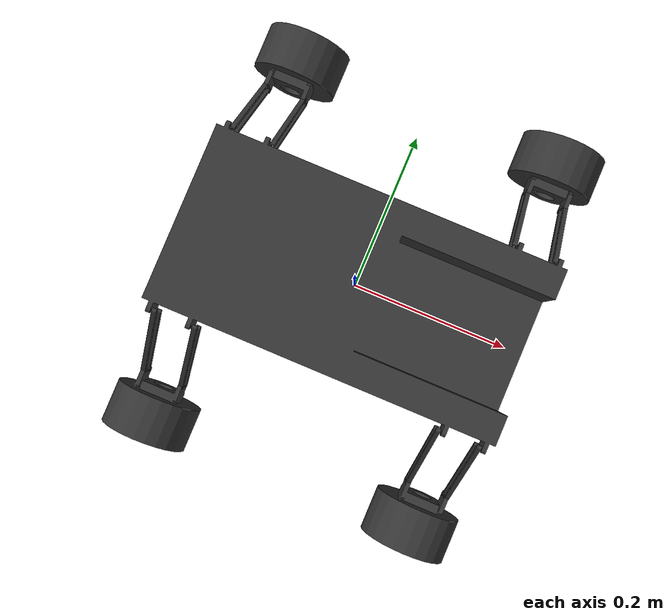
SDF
<?xml version="1.0" encoding="UTF-8"?>
<!-- DO NOT EDIT: Generated from XXX.sdf.jinja -->

<sdf version='1.9'>
  <model name='asl_rover'>

    <pose>0 0 0 0 0 0</pose>
    <self_collide>false</self_collide>
    <static>false</static>

    <link name='base_link'>
      <pose>0 0 0 0 0 0</pose>
      <inertial>
        <pose>0 0 0 0 0 0</pose>
        <mass>1.5</mass>
        <inertia>
          <ixx>0.035</ixx>
          <ixy>0</ixy>
          <ixz>0</ixz>
          <iyy>0.035</iyy>
          <iyz>0</iyz>
          <izz>0.055</izz>
        </inertia>
      </inertial>
      <collision name='base_link_top_collision'>
        <pose>0 0 0.02 0 0 0</pose>
        <geometry>
  <box>
    <size>0.5 0.5 0.01</size>
  </box>
</geometry>
        <surface>
          <contact>
            <ode>
              <min_depth>0.001</min_depth>
              <max_vel>0</max_vel>
            </ode>
          </contact>
          <friction>
            <ode/>
          </friction>
        </surface>
      </collision>

      <visual name='base_link_visual'>
        <pose>0 0 0 0 0 -1.5707963267948966</pose>
        <geometry>
          <mesh>
            <scale>1 1 1</scale>
            <uri>model://asl_rover/meshes/base.dae</uri>
          </mesh>
        </geometry>
        <material>
          <ambient>0.1 0.1 0.1 1</ambient>   <!-- Very dark gray for ambient lighting -->
          <diffuse>0.2 0.2 0.2 1</diffuse>   <!-- Slightly lighter dark gray for diffuse color -->
          <specular>0.6 0.6 0.6 1</specular> <!-- Medium specular to create a subtle shine -->
          <emissive>0.0 0.0 0.0 1</emissive> <!-- No emissive, to avoid self-illumination -->
        </material>
      </visual>
      <gravity>1</gravity>
      <velocity_decay/>

      <sensor name="air_pressure_sensor" type="air_pressure">
        <always_on>1</always_on>
        <update_rate>50</update_rate>
        <air_pressure>
          <!-- Noise modeled after BMP390 -->
          <pressure>
            <noise type="gaussian">
              <mean>0</mean>
              <stddev>3</stddev>
            </noise>
          </pressure>
        </air_pressure>
      </sensor>
      <sensor name="magnetometer_sensor" type="magnetometer">
        <always_on>1</always_on>
        <update_rate>100</update_rate>
        <magnetometer>
          <!-- TODO: update to fix units and coordinate system when we move past Harmonic -->
          <!-- See https://github.com/gazebosim/gz-sim/pull/2460 -->
          <!-- 3mgauss RMS: NOTE: noise is in tesla but sensor reports data in gauss -->
          <!-- Noise modeled after IIS2MDC -->
          <x>
            <noise type="gaussian">
              <stddev>0.0001</stddev>
            </noise>
          </x>
          <y>
            <noise type="gaussian">
              <stddev>0.0001</stddev>
            </noise>
          </y>
          <z>
            <noise type="gaussian">
              <stddev>0.0001</stddev>
            </noise>
          </z>
        </magnetometer>
      </sensor>
      <sensor name="imu_sensor" type="imu">
        <always_on>1</always_on>
        <update_rate>250</update_rate>
        <imu>
          <angular_velocity>
            <!-- Noise modeled after IIM42653 -->
            <!-- 0.05 deg/s converted to rad/s -->
            <x>
              <noise type="gaussian">
                <mean>0.0</mean>
                <stddev>0.0008726646</stddev>
              </noise>
            </x>
            <y>
              <noise type="gaussian">
                <mean>0.0</mean>
                <stddev>0.0008726646</stddev>
              </noise>
            </y>
            <z>
              <noise type="gaussian">
                <mean>0.0</mean>
                <stddev>0.0008726646</stddev>
              </noise>
            </z>
          </angular_velocity>
          <linear_acceleration>
            <!-- Noise modeled after IIM42653 -->
            <!-- X & Y axis: 0.65 mg-rms converted to m/ss -->
            <x>
              <noise type="gaussian">
                <mean>0.0</mean>
                <stddev>0.00637</stddev>
              </noise>
            </x>
            <y>
              <noise type="gaussian">
                <mean>0.0</mean>
                <stddev>0.00637</stddev>
              </noise>
            </y>
            <!-- Z axis: 0.70 mg-rms converted to m/ss-->
            <z>
              <noise type="gaussian">
                <mean>0.0</mean>
                <stddev>0.00686</stddev>
              </noise>
            </z>
          </linear_acceleration>
        </imu>
      </sensor>
      <sensor name="navsat_sensor" type="navsat">
        <always_on>1</always_on>
        <update_rate>30</update_rate>
      </sensor>

    </link>

    <joint name='wheel0_bar_base_joint' type='revolute'>

  <pose relative_to='base_link'>0.1925 0.12625 -0.0075 -0.7853981633974483 0 0</pose>

  <child>wheel0_bar_link</child>
  <parent>base_link</parent>
  <axis>
    <xyz>1 0 0</xyz>
    <limit>
      <lower>-0.0</lower>
      <upper>0.0</upper>
    </limit>
    <dynamics>
      <spring_reference>0</spring_reference>
      <spring_stiffness>1000</spring_stiffness>
      <damping>1</damping>
    </dynamics>
    <use_parent_model_frame>1</use_parent_model_frame>
  </axis>
</joint>

<link name='wheel0_bar_link'>

  <pose relative_to='wheel0_bar_base_joint'>0 0.06 0 0 0 1.5707963267948966</pose>

  <inertial>
        <pose>0 0 0 0 0 0</pose>
        <mass>0.001</mass>
        <inertia>
          <ixx>2.1733e-06</ixx>
          <ixy>0</ixy>
          <ixz>0</ixz>
          <iyy>2.1733e-06</iyy>
          <iyz>0</iyz>
          <izz>1.8e-07</izz>
        </inertia>
  </inertial>

  <visual name='wheel0_bar1_visual'>

    <pose relative_to='wheel0_bar_link'>0 0.0275 0 0 0 0</pose>

      <geometry>
        <mesh>
          <scale>1 1 1</scale>
          <uri>model://asl_rover/meshes/bar.dae</uri>
        </mesh>
      </geometry>
      <material>
        <ambient>0.1 0.1 0.1 1</ambient>   <!-- Very dark gray for ambient lighting -->
        <diffuse>0.2 0.2 0.2 1</diffuse>   <!-- Slightly lighter dark gray for diffuse color -->
        <specular>0.6 0.6 0.6 1</specular> <!-- Medium specular to create a subtle shine -->
        <emissive>0.0 0.0 0.0 1</emissive> <!-- No emissive, to avoid self-illumination -->
      </material>
  </visual>

  <visual name='wheel0_bar2_visual'>

    <pose relative_to='wheel0_bar_link'>0 -0.0275 0 0 0 0</pose>

      <geometry>
        <mesh>
          <scale>1 1 1</scale>
          <uri>model://asl_rover/meshes/bar.dae</uri>
        </mesh>
      </geometry>
      <material>
        <ambient>0.1 0.1 0.1 1</ambient>   <!-- Very dark gray for ambient lighting -->
        <diffuse>0.2 0.2 0.2 1</diffuse>   <!-- Slightly lighter dark gray for diffuse color -->
        <specular>0.6 0.6 0.6 1</specular> <!-- Medium specular to create a subtle shine -->
        <emissive>0.0 0.0 0.0 1</emissive> <!-- No emissive, to avoid self-illumination -->
      </material>
  </visual>

  <visual name='wheel0_bar3_visual'>

    <pose relative_to='wheel0_bar_link'>0.01873832970144351 0.0275 -0.01873832970144351 0 0 0</pose>

      <geometry>
        <mesh>
          <scale>1 1 1</scale>
          <uri>model://asl_rover/meshes/bar.dae</uri>
        </mesh>
      </geometry>
      <material>
        <ambient>0.1 0.1 0.1 1</ambient>   <!-- Very dark gray for ambient lighting -->
        <diffuse>0.2 0.2 0.2 1</diffuse>   <!-- Slightly lighter dark gray for diffuse color -->
        <specular>0.6 0.6 0.6 1</specular> <!-- Medium specular to create a subtle shine -->
        <emissive>0.0 0.0 0.0 1</emissive> <!-- No emissive, to avoid self-illumination -->
      </material>
  </visual>

  <visual name='wheel0_bar4_visual'>

    <pose relative_to='wheel0_bar_link'>0.01873832970144351 -0.0275 -0.01873832970144351 0 0 0</pose>

      <geometry>
        <mesh>
          <scale>1 1 1</scale>
          <uri>model://asl_rover/meshes/bar.dae</uri>
        </mesh>
      </geometry>
      <material>
        <ambient>0.1 0.1 0.1 1</ambient>   <!-- Very dark gray for ambient lighting -->
        <diffuse>0.2 0.2 0.2 1</diffuse>   <!-- Slightly lighter dark gray for diffuse color -->
        <specular>0.6 0.6 0.6 1</specular> <!-- Medium specular to create a subtle shine -->
        <emissive>0.0 0.0 0.0 1</emissive> <!-- No emissive, to avoid self-illumination -->
      </material>
  </visual>
</link>

<joint name='wheel0_wheel_housing_bar_joint' type='revolute'>

  <pose relative_to='wheel0_bar_link'>0.06 0 0 0.7853981633974483 0 -1.5707963267948966</pose>

  <child>wheel0_wheel_housing_link</child>
  <parent>wheel0_bar_link</parent>
  <axis>
    <xyz>1 0 0</xyz>
    <limit>
      <lower>-0.0</lower>
      <upper>0.0</upper>
    </limit>
    <dynamics>
      <spring_reference>0</spring_reference>
      <spring_stiffness>0</spring_stiffness>
    </dynamics>
    <use_parent_model_frame>1</use_parent_model_frame>
  </axis>
</joint>

<link name='wheel0_wheel_housing_link'>

  <pose relative_to='wheel0_wheel_housing_bar_joint'>0 0 -0.0375 0 0 0</pose>

  <inertial>
        <pose>0 0 0 0 0 0</pose>
        <mass>0.001</mass>
        <inertia>
          <ixx>2.1733e-06</ixx>
          <ixy>0</ixy>
          <ixz>0</ixz>
          <iyy>2.1733e-06</iyy>
          <iyz>0</iyz>
          <izz>1.8e-07</izz>
        </inertia>
  </inertial>

  <visual name='wheel0_wheel_housing_visual'>

    <pose>0 0 0 0 0 1.5707963267948966</pose>

      <geometry>
        <mesh>
          <scale>1 1 1</scale>
          <uri>model://asl_rover/meshes/wheel_housing.dae</uri>
        </mesh>
      </geometry>
      <material>
        <ambient>0.1 0.1 0.1 1</ambient>   <!-- Very dark gray for ambient lighting -->
        <diffuse>0.2 0.2 0.2 1</diffuse>   <!-- Slightly lighter dark gray for diffuse color -->
        <specular>0.6 0.6 0.6 1</specular> <!-- Medium specular to create a subtle shine -->
        <emissive>0.0 0.0 0.0 1</emissive> <!-- No emissive, to avoid self-illumination -->
      </material>
  </visual>
</link>

<joint name='wheel0_wheel_joint' type='revolute'>

  <pose relative_to='wheel0_wheel_housing_link'>0 0.055 0 0 0 0</pose>

  <child>wheel0_link</child>
  <parent>wheel0_wheel_housing_link</parent>
  <axis>
    <xyz>0 1 0</xyz>
    <limit>
      <lower>-1e+16</lower>
      <upper>1e+16</upper>
    </limit>
    <dynamics>
      <spring_reference>0</spring_reference>
      <spring_stiffness>0</spring_stiffness>
      <friction>0.001</friction>
      <damping>0.0</damping>
    </dynamics>
    <use_parent_model_frame>1</use_parent_model_frame>
  </axis>
</joint>

<link name='wheel0_link'>
  <pose relative_to='wheel0_wheel_joint'>0 0 0 0 0 0</pose>
  <inertial>
        <pose>0 0 0 0 0 0</pose>
        <mass>0.001</mass>
        <inertia>
          <ixx>2.1733e-06</ixx>
          <ixy>0</ixy>
          <ixz>0</ixz>
          <iyy>2.1733e-06</iyy>
          <iyz>0</iyz>
          <izz>1.8e-07</izz>
        </inertia>
  </inertial>

  <visual name='wheel0_wheel_housing_visual'>
    <pose>0 0 0 1.5707963267948966 0 0</pose>

      <geometry>
  <cylinder>
    <length>0.06</length>
    <radius>0.06</radius>
  </cylinder>
</geometry>

      <material>
        <ambient>0.1 0.1 0.1 1</ambient>   <!-- Very dark gray for ambient lighting -->
        <diffuse>0.2 0.2 0.2 1</diffuse>   <!-- Slightly lighter dark gray for diffuse color -->
        <specular>0.6 0.6 0.6 1</specular> <!-- Medium specular to create a subtle shine -->
        <emissive>0.0 0.0 0.0 1</emissive> <!-- No emissive, to avoid self-illumination -->
      </material>
  </visual>

  <collision name='wheel0_link_collision'>
				<pose>0 0 0 1.5707963267948966 0 0</pose>
				<geometry>
  <cylinder>
    <length>0.06</length>
    <radius>0.06</radius>
  </cylinder>
</geometry>
				<max_contacts>1</max_contacts>
				<surface>
					<friction>
					<torsional>
						<coefficient>0.25</coefficient>
						<use_patch_radius>1</use_patch_radius>
						<surface_radius>0.0686</surface_radius>
					</torsional>
					<ode>
						<mu>1.0</mu>
						<mu2>1.0</mu2>
						<fdir1>1 0 0</fdir1>
						<slip1>0.0</slip1>
						<slip2>0.0</slip2>
					</ode>
					</friction>
					<bounce>
						<restitution_coefficient>0</restitution_coefficient>
						<threshold>1e6</threshold>
					</bounce>
					<contact>
					<ode>
						<min_depth>0.001</min_depth>
						<max_vel>0.0</max_vel>
						<kp>1.0e6</kp>
						<kd>100.0</kd>
					</ode>
					</contact>
				</surface>
			</collision>

</link>

<plugin filename="gz-sim-joint-controller-system" name="gz::sim::systems::JointController">
  <joint_name>wheel0_wheel_joint</joint_name>
  <sub_topic>command/motor_speed</sub_topic>
  <use_actuator_msg>true</use_actuator_msg>

  <actuator_number>0</actuator_number>

  <p_gain>10.0</p_gain>
</plugin>

    <joint name='wheel1_bar_base_joint' type='revolute'>

  <pose relative_to='base_link'>0.1925 -0.12625 -0.0075 3.9269908169872414 0 0</pose>

  <child>wheel1_bar_link</child>
  <parent>base_link</parent>
  <axis>
    <xyz>1 0 0</xyz>
    <limit>
      <lower>-0.0</lower>
      <upper>0.0</upper>
    </limit>
    <dynamics>
      <spring_reference>0</spring_reference>
      <spring_stiffness>1000</spring_stiffness>
      <damping>1</damping>
    </dynamics>
    <use_parent_model_frame>1</use_parent_model_frame>
  </axis>
</joint>

<link name='wheel1_bar_link'>

  <pose relative_to='wheel1_bar_base_joint'>0 0.06 0 0 0 1.5707963267948966</pose>

  <inertial>
        <pose>0 0 0 0 0 0</pose>
        <mass>0.001</mass>
        <inertia>
          <ixx>2.1733e-06</ixx>
          <ixy>0</ixy>
          <ixz>0</ixz>
          <iyy>2.1733e-06</iyy>
          <iyz>0</iyz>
          <izz>1.8e-07</izz>
        </inertia>
  </inertial>

  <visual name='wheel1_bar1_visual'>

    <pose relative_to='wheel1_bar_link'>0 -0.0275 0 0 0 0</pose>

      <geometry>
        <mesh>
          <scale>1 1 1</scale>
          <uri>model://asl_rover/meshes/bar.dae</uri>
        </mesh>
      </geometry>
      <material>
        <ambient>0.1 0.1 0.1 1</ambient>   <!-- Very dark gray for ambient lighting -->
        <diffuse>0.2 0.2 0.2 1</diffuse>   <!-- Slightly lighter dark gray for diffuse color -->
        <specular>0.6 0.6 0.6 1</specular> <!-- Medium specular to create a subtle shine -->
        <emissive>0.0 0.0 0.0 1</emissive> <!-- No emissive, to avoid self-illumination -->
      </material>
  </visual>

  <visual name='wheel1_bar2_visual'>

    <pose relative_to='wheel1_bar_link'>0 0.0275 0 0 0 0</pose>

      <geometry>
        <mesh>
          <scale>1 1 1</scale>
          <uri>model://asl_rover/meshes/bar.dae</uri>
        </mesh>
      </geometry>
      <material>
        <ambient>0.1 0.1 0.1 1</ambient>   <!-- Very dark gray for ambient lighting -->
        <diffuse>0.2 0.2 0.2 1</diffuse>   <!-- Slightly lighter dark gray for diffuse color -->
        <specular>0.6 0.6 0.6 1</specular> <!-- Medium specular to create a subtle shine -->
        <emissive>0.0 0.0 0.0 1</emissive> <!-- No emissive, to avoid self-illumination -->
      </material>
  </visual>

  <visual name='wheel1_bar3_visual'>

    <pose relative_to='wheel1_bar_link'>0.01873832970144351 -0.0275 0.01873832970144351 0 0 0</pose>

      <geometry>
        <mesh>
          <scale>1 1 1</scale>
          <uri>model://asl_rover/meshes/bar.dae</uri>
        </mesh>
      </geometry>
      <material>
        <ambient>0.1 0.1 0.1 1</ambient>   <!-- Very dark gray for ambient lighting -->
        <diffuse>0.2 0.2 0.2 1</diffuse>   <!-- Slightly lighter dark gray for diffuse color -->
        <specular>0.6 0.6 0.6 1</specular> <!-- Medium specular to create a subtle shine -->
        <emissive>0.0 0.0 0.0 1</emissive> <!-- No emissive, to avoid self-illumination -->
      </material>
  </visual>

  <visual name='wheel1_bar4_visual'>

    <pose relative_to='wheel1_bar_link'>0.01873832970144351 0.0275 0.01873832970144351 0 0 0</pose>

      <geometry>
        <mesh>
          <scale>1 1 1</scale>
          <uri>model://asl_rover/meshes/bar.dae</uri>
        </mesh>
      </geometry>
      <material>
        <ambient>0.1 0.1 0.1 1</ambient>   <!-- Very dark gray for ambient lighting -->
        <diffuse>0.2 0.2 0.2 1</diffuse>   <!-- Slightly lighter dark gray for diffuse color -->
        <specular>0.6 0.6 0.6 1</specular> <!-- Medium specular to create a subtle shine -->
        <emissive>0.0 0.0 0.0 1</emissive> <!-- No emissive, to avoid self-illumination -->
      </material>
  </visual>
</link>

<joint name='wheel1_wheel_housing_bar_joint' type='revolute'>

  <pose relative_to='wheel1_bar_link'>0.06 0 0 2.356194490192345 0 -1.5707963267948966</pose>

  <child>wheel1_wheel_housing_link</child>
  <parent>wheel1_bar_link</parent>
  <axis>
    <xyz>1 0 0</xyz>
    <limit>
      <lower>-0.0</lower>
      <upper>0.0</upper>
    </limit>
    <dynamics>
      <spring_reference>0</spring_reference>
      <spring_stiffness>0</spring_stiffness>
    </dynamics>
    <use_parent_model_frame>1</use_parent_model_frame>
  </axis>
</joint>

<link name='wheel1_wheel_housing_link'>

  <pose relative_to='wheel1_wheel_housing_bar_joint'>0 0 -0.0375 0 0 0</pose>

  <inertial>
        <pose>0 0 0 0 0 0</pose>
        <mass>0.001</mass>
        <inertia>
          <ixx>2.1733e-06</ixx>
          <ixy>0</ixy>
          <ixz>0</ixz>
          <iyy>2.1733e-06</iyy>
          <iyz>0</iyz>
          <izz>1.8e-07</izz>
        </inertia>
  </inertial>

  <visual name='wheel1_wheel_housing_visual'>

    <pose>0 0 0 0 0 -1.5707963267948966</pose>

      <geometry>
        <mesh>
          <scale>1 1 1</scale>
          <uri>model://asl_rover/meshes/wheel_housing.dae</uri>
        </mesh>
      </geometry>
      <material>
        <ambient>0.1 0.1 0.1 1</ambient>   <!-- Very dark gray for ambient lighting -->
        <diffuse>0.2 0.2 0.2 1</diffuse>   <!-- Slightly lighter dark gray for diffuse color -->
        <specular>0.6 0.6 0.6 1</specular> <!-- Medium specular to create a subtle shine -->
        <emissive>0.0 0.0 0.0 1</emissive> <!-- No emissive, to avoid self-illumination -->
      </material>
  </visual>
</link>

<joint name='wheel1_wheel_joint' type='revolute'>

  <pose relative_to='wheel1_wheel_housing_link'>0 -0.055 0 0 0 0</pose>

  <child>wheel1_link</child>
  <parent>wheel1_wheel_housing_link</parent>
  <axis>
    <xyz>0 1 0</xyz>
    <limit>
      <lower>-1e+16</lower>
      <upper>1e+16</upper>
    </limit>
    <dynamics>
      <spring_reference>0</spring_reference>
      <spring_stiffness>0</spring_stiffness>
      <friction>0.001</friction>
      <damping>0.0</damping>
    </dynamics>
    <use_parent_model_frame>1</use_parent_model_frame>
  </axis>
</joint>

<link name='wheel1_link'>
  <pose relative_to='wheel1_wheel_joint'>0 0 0 0 0 0</pose>
  <inertial>
        <pose>0 0 0 0 0 0</pose>
        <mass>0.001</mass>
        <inertia>
          <ixx>2.1733e-06</ixx>
          <ixy>0</ixy>
          <ixz>0</ixz>
          <iyy>2.1733e-06</iyy>
          <iyz>0</iyz>
          <izz>1.8e-07</izz>
        </inertia>
  </inertial>

  <visual name='wheel1_wheel_housing_visual'>
    <pose>0 0 0 1.5707963267948966 0 0</pose>

      <geometry>
  <cylinder>
    <length>0.06</length>
    <radius>0.06</radius>
  </cylinder>
</geometry>

      <material>
        <ambient>0.1 0.1 0.1 1</ambient>   <!-- Very dark gray for ambient lighting -->
        <diffuse>0.2 0.2 0.2 1</diffuse>   <!-- Slightly lighter dark gray for diffuse color -->
        <specular>0.6 0.6 0.6 1</specular> <!-- Medium specular to create a subtle shine -->
        <emissive>0.0 0.0 0.0 1</emissive> <!-- No emissive, to avoid self-illumination -->
      </material>
  </visual>

  <collision name='wheel1_link_collision'>
				<pose>0 0 0 1.5707963267948966 0 0</pose>
				<geometry>
  <cylinder>
    <length>0.06</length>
    <radius>0.06</radius>
  </cylinder>
</geometry>
				<max_contacts>1</max_contacts>
				<surface>
					<friction>
					<torsional>
						<coefficient>0.25</coefficient>
						<use_patch_radius>1</use_patch_radius>
						<surface_radius>0.0686</surface_radius>
					</torsional>
					<ode>
						<mu>1.0</mu>
						<mu2>1.0</mu2>
						<fdir1>1 0 0</fdir1>
						<slip1>0.0</slip1>
						<slip2>0.0</slip2>
					</ode>
					</friction>
					<bounce>
						<restitution_coefficient>0</restitution_coefficient>
						<threshold>1e6</threshold>
					</bounce>
					<contact>
					<ode>
						<min_depth>0.001</min_depth>
						<max_vel>0.0</max_vel>
						<kp>1.0e6</kp>
						<kd>100.0</kd>
					</ode>
					</contact>
				</surface>
			</collision>

</link>

<plugin filename="gz-sim-joint-controller-system" name="gz::sim::systems::JointController">
  <joint_name>wheel1_wheel_joint</joint_name>
  <sub_topic>command/motor_speed</sub_topic>
  <use_actuator_msg>true</use_actuator_msg>

  <actuator_number>1</actuator_number>

  <p_gain>10.0</p_gain>
</plugin>

    <joint name='wheel2_bar_base_joint' type='revolute'>

  <pose relative_to='base_link'>-0.1925 0.12625 -0.0075 -0.7853981633974483 0 0</pose>

  <child>wheel2_bar_link</child>
  <parent>base_link</parent>
  <axis>
    <xyz>1 0 0</xyz>
    <limit>
      <lower>-0.0</lower>
      <upper>0.0</upper>
    </limit>
    <dynamics>
      <spring_reference>0</spring_reference>
      <spring_stiffness>1000</spring_stiffness>
      <damping>1</damping>
    </dynamics>
    <use_parent_model_frame>1</use_parent_model_frame>
  </axis>
</joint>

<link name='wheel2_bar_link'>

  <pose relative_to='wheel2_bar_base_joint'>0 0.06 0 0 0 1.5707963267948966</pose>

  <inertial>
        <pose>0 0 0 0 0 0</pose>
        <mass>0.001</mass>
        <inertia>
          <ixx>2.1733e-06</ixx>
          <ixy>0</ixy>
          <ixz>0</ixz>
          <iyy>2.1733e-06</iyy>
          <iyz>0</iyz>
          <izz>1.8e-07</izz>
        </inertia>
  </inertial>

  <visual name='wheel2_bar1_visual'>

    <pose relative_to='wheel2_bar_link'>0 0.0275 0 0 0 0</pose>

      <geometry>
        <mesh>
          <scale>1 1 1</scale>
          <uri>model://asl_rover/meshes/bar.dae</uri>
        </mesh>
      </geometry>
      <material>
        <ambient>0.1 0.1 0.1 1</ambient>   <!-- Very dark gray for ambient lighting -->
        <diffuse>0.2 0.2 0.2 1</diffuse>   <!-- Slightly lighter dark gray for diffuse color -->
        <specular>0.6 0.6 0.6 1</specular> <!-- Medium specular to create a subtle shine -->
        <emissive>0.0 0.0 0.0 1</emissive> <!-- No emissive, to avoid self-illumination -->
      </material>
  </visual>

  <visual name='wheel2_bar2_visual'>

    <pose relative_to='wheel2_bar_link'>0 -0.0275 0 0 0 0</pose>

      <geometry>
        <mesh>
          <scale>1 1 1</scale>
          <uri>model://asl_rover/meshes/bar.dae</uri>
        </mesh>
      </geometry>
      <material>
        <ambient>0.1 0.1 0.1 1</ambient>   <!-- Very dark gray for ambient lighting -->
        <diffuse>0.2 0.2 0.2 1</diffuse>   <!-- Slightly lighter dark gray for diffuse color -->
        <specular>0.6 0.6 0.6 1</specular> <!-- Medium specular to create a subtle shine -->
        <emissive>0.0 0.0 0.0 1</emissive> <!-- No emissive, to avoid self-illumination -->
      </material>
  </visual>

  <visual name='wheel2_bar3_visual'>

    <pose relative_to='wheel2_bar_link'>0.01873832970144351 0.0275 -0.01873832970144351 0 0 0</pose>

      <geometry>
        <mesh>
          <scale>1 1 1</scale>
          <uri>model://asl_rover/meshes/bar.dae</uri>
        </mesh>
      </geometry>
      <material>
        <ambient>0.1 0.1 0.1 1</ambient>   <!-- Very dark gray for ambient lighting -->
        <diffuse>0.2 0.2 0.2 1</diffuse>   <!-- Slightly lighter dark gray for diffuse color -->
        <specular>0.6 0.6 0.6 1</specular> <!-- Medium specular to create a subtle shine -->
        <emissive>0.0 0.0 0.0 1</emissive> <!-- No emissive, to avoid self-illumination -->
      </material>
  </visual>

  <visual name='wheel2_bar4_visual'>

    <pose relative_to='wheel2_bar_link'>0.01873832970144351 -0.0275 -0.01873832970144351 0 0 0</pose>

      <geometry>
        <mesh>
          <scale>1 1 1</scale>
          <uri>model://asl_rover/meshes/bar.dae</uri>
        </mesh>
      </geometry>
      <material>
        <ambient>0.1 0.1 0.1 1</ambient>   <!-- Very dark gray for ambient lighting -->
        <diffuse>0.2 0.2 0.2 1</diffuse>   <!-- Slightly lighter dark gray for diffuse color -->
        <specular>0.6 0.6 0.6 1</specular> <!-- Medium specular to create a subtle shine -->
        <emissive>0.0 0.0 0.0 1</emissive> <!-- No emissive, to avoid self-illumination -->
      </material>
  </visual>
</link>

<joint name='wheel2_wheel_housing_bar_joint' type='revolute'>

  <pose relative_to='wheel2_bar_link'>0.06 0 0 0.7853981633974483 0 -1.5707963267948966</pose>

  <child>wheel2_wheel_housing_link</child>
  <parent>wheel2_bar_link</parent>
  <axis>
    <xyz>1 0 0</xyz>
    <limit>
      <lower>-0.0</lower>
      <upper>0.0</upper>
    </limit>
    <dynamics>
      <spring_reference>0</spring_reference>
      <spring_stiffness>0</spring_stiffness>
    </dynamics>
    <use_parent_model_frame>1</use_parent_model_frame>
  </axis>
</joint>

<link name='wheel2_wheel_housing_link'>

  <pose relative_to='wheel2_wheel_housing_bar_joint'>0 0 -0.0375 0 0 0</pose>

  <inertial>
        <pose>0 0 0 0 0 0</pose>
        <mass>0.001</mass>
        <inertia>
          <ixx>2.1733e-06</ixx>
          <ixy>0</ixy>
          <ixz>0</ixz>
          <iyy>2.1733e-06</iyy>
          <iyz>0</iyz>
          <izz>1.8e-07</izz>
        </inertia>
  </inertial>

  <visual name='wheel2_wheel_housing_visual'>

    <pose>0 0 0 0 0 1.5707963267948966</pose>

      <geometry>
        <mesh>
          <scale>1 1 1</scale>
          <uri>model://asl_rover/meshes/wheel_housing.dae</uri>
        </mesh>
      </geometry>
      <material>
        <ambient>0.1 0.1 0.1 1</ambient>   <!-- Very dark gray for ambient lighting -->
        <diffuse>0.2 0.2 0.2 1</diffuse>   <!-- Slightly lighter dark gray for diffuse color -->
        <specular>0.6 0.6 0.6 1</specular> <!-- Medium specular to create a subtle shine -->
        <emissive>0.0 0.0 0.0 1</emissive> <!-- No emissive, to avoid self-illumination -->
      </material>
  </visual>
</link>

<joint name='wheel2_wheel_joint' type='revolute'>

  <pose relative_to='wheel2_wheel_housing_link'>0 0.055 0 0 0 0</pose>

  <child>wheel2_link</child>
  <parent>wheel2_wheel_housing_link</parent>
  <axis>
    <xyz>0 1 0</xyz>
    <limit>
      <lower>-1e+16</lower>
      <upper>1e+16</upper>
    </limit>
    <dynamics>
      <spring_reference>0</spring_reference>
      <spring_stiffness>0</spring_stiffness>
      <friction>0.001</friction>
      <damping>0.0</damping>
    </dynamics>
    <use_parent_model_frame>1</use_parent_model_frame>
  </axis>
</joint>

<link name='wheel2_link'>
  <pose relative_to='wheel2_wheel_joint'>0 0 0 0 0 0</pose>
  <inertial>
        <pose>0 0 0 0 0 0</pose>
        <mass>0.001</mass>
        <inertia>
          <ixx>2.1733e-06</ixx>
          <ixy>0</ixy>
          <ixz>0</ixz>
          <iyy>2.1733e-06</iyy>
          <iyz>0</iyz>
          <izz>1.8e-07</izz>
        </inertia>
  </inertial>

  <visual name='wheel2_wheel_housing_visual'>
    <pose>0 0 0 1.5707963267948966 0 0</pose>

      <geometry>
  <cylinder>
    <length>0.06</length>
    <radius>0.06</radius>
  </cylinder>
</geometry>

      <material>
        <ambient>0.1 0.1 0.1 1</ambient>   <!-- Very dark gray for ambient lighting -->
        <diffuse>0.2 0.2 0.2 1</diffuse>   <!-- Slightly lighter dark gray for diffuse color -->
        <specular>0.6 0.6 0.6 1</specular> <!-- Medium specular to create a subtle shine -->
        <emissive>0.0 0.0 0.0 1</emissive> <!-- No emissive, to avoid self-illumination -->
      </material>
  </visual>

  <collision name='wheel2_link_collision'>
				<pose>0 0 0 1.5707963267948966 0 0</pose>
				<geometry>
  <cylinder>
    <length>0.06</length>
    <radius>0.06</radius>
  </cylinder>
</geometry>
				<max_contacts>1</max_contacts>
				<surface>
					<friction>
					<torsional>
						<coefficient>0.25</coefficient>
						<use_patch_radius>1</use_patch_radius>
						<surface_radius>0.0686</surface_radius>
					</torsional>
					<ode>
						<mu>1.0</mu>
						<mu2>1.0</mu2>
						<fdir1>1 0 0</fdir1>
						<slip1>0.0</slip1>
						<slip2>0.0</slip2>
					</ode>
					</friction>
					<bounce>
						<restitution_coefficient>0</restitution_coefficient>
						<threshold>1e6</threshold>
					</bounce>
					<contact>
					<ode>
						<min_depth>0.001</min_depth>
						<max_vel>0.0</max_vel>
						<kp>1.0e6</kp>
						<kd>100.0</kd>
					</ode>
					</contact>
				</surface>
			</collision>

</link>

<plugin filename="gz-sim-joint-controller-system" name="gz::sim::systems::JointController">
  <joint_name>wheel2_wheel_joint</joint_name>
  <sub_topic>command/motor_speed</sub_topic>
  <use_actuator_msg>true</use_actuator_msg>

  <actuator_number>0</actuator_number>

  <p_gain>10.0</p_gain>
</plugin>

    <joint name='wheel3_bar_base_joint' type='revolute'>

  <pose relative_to='base_link'>-0.1925 -0.12625 -0.0075 3.9269908169872414 0 0</pose>

  <child>wheel3_bar_link</child>
  <parent>base_link</parent>
  <axis>
    <xyz>1 0 0</xyz>
    <limit>
      <lower>-0.0</lower>
      <upper>0.0</upper>
    </limit>
    <dynamics>
      <spring_reference>0</spring_reference>
      <spring_stiffness>1000</spring_stiffness>
      <damping>1</damping>
    </dynamics>
    <use_parent_model_frame>1</use_parent_model_frame>
  </axis>
</joint>

<link name='wheel3_bar_link'>

  <pose relative_to='wheel3_bar_base_joint'>0 0.06 0 0 0 1.5707963267948966</pose>

  <inertial>
        <pose>0 0 0 0 0 0</pose>
        <mass>0.001</mass>
        <inertia>
          <ixx>2.1733e-06</ixx>
          <ixy>0</ixy>
          <ixz>0</ixz>
          <iyy>2.1733e-06</iyy>
          <iyz>0</iyz>
          <izz>1.8e-07</izz>
        </inertia>
  </inertial>

  <visual name='wheel3_bar1_visual'>

    <pose relative_to='wheel3_bar_link'>0 -0.0275 0 0 0 0</pose>

      <geometry>
        <mesh>
          <scale>1 1 1</scale>
          <uri>model://asl_rover/meshes/bar.dae</uri>
        </mesh>
      </geometry>
      <material>
        <ambient>0.1 0.1 0.1 1</ambient>   <!-- Very dark gray for ambient lighting -->
        <diffuse>0.2 0.2 0.2 1</diffuse>   <!-- Slightly lighter dark gray for diffuse color -->
        <specular>0.6 0.6 0.6 1</specular> <!-- Medium specular to create a subtle shine -->
        <emissive>0.0 0.0 0.0 1</emissive> <!-- No emissive, to avoid self-illumination -->
      </material>
  </visual>

  <visual name='wheel3_bar2_visual'>

    <pose relative_to='wheel3_bar_link'>0 0.0275 0 0 0 0</pose>

      <geometry>
        <mesh>
          <scale>1 1 1</scale>
          <uri>model://asl_rover/meshes/bar.dae</uri>
        </mesh>
      </geometry>
      <material>
        <ambient>0.1 0.1 0.1 1</ambient>   <!-- Very dark gray for ambient lighting -->
        <diffuse>0.2 0.2 0.2 1</diffuse>   <!-- Slightly lighter dark gray for diffuse color -->
        <specular>0.6 0.6 0.6 1</specular> <!-- Medium specular to create a subtle shine -->
        <emissive>0.0 0.0 0.0 1</emissive> <!-- No emissive, to avoid self-illumination -->
      </material>
  </visual>

  <visual name='wheel3_bar3_visual'>

    <pose relative_to='wheel3_bar_link'>0.01873832970144351 -0.0275 0.01873832970144351 0 0 0</pose>

      <geometry>
        <mesh>
          <scale>1 1 1</scale>
          <uri>model://asl_rover/meshes/bar.dae</uri>
        </mesh>
      </geometry>
      <material>
        <ambient>0.1 0.1 0.1 1</ambient>   <!-- Very dark gray for ambient lighting -->
        <diffuse>0.2 0.2 0.2 1</diffuse>   <!-- Slightly lighter dark gray for diffuse color -->
        <specular>0.6 0.6 0.6 1</specular> <!-- Medium specular to create a subtle shine -->
        <emissive>0.0 0.0 0.0 1</emissive> <!-- No emissive, to avoid self-illumination -->
      </material>
  </visual>

  <visual name='wheel3_bar4_visual'>

    <pose relative_to='wheel3_bar_link'>0.01873832970144351 0.0275 0.01873832970144351 0 0 0</pose>

      <geometry>
        <mesh>
          <scale>1 1 1</scale>
          <uri>model://asl_rover/meshes/bar.dae</uri>
        </mesh>
      </geometry>
      <material>
        <ambient>0.1 0.1 0.1 1</ambient>   <!-- Very dark gray for ambient lighting -->
        <diffuse>0.2 0.2 0.2 1</diffuse>   <!-- Slightly lighter dark gray for diffuse color -->
        <specular>0.6 0.6 0.6 1</specular> <!-- Medium specular to create a subtle shine -->
        <emissive>0.0 0.0 0.0 1</emissive> <!-- No emissive, to avoid self-illumination -->
      </material>
  </visual>
</link>

<joint name='wheel3_wheel_housing_bar_joint' type='revolute'>

  <pose relative_to='wheel3_bar_link'>0.06 0 0 2.356194490192345 0 -1.5707963267948966</pose>

  <child>wheel3_wheel_housing_link</child>
  <parent>wheel3_bar_link</parent>
  <axis>
    <xyz>1 0 0</xyz>
    <limit>
      <lower>-0.0</lower>
      <upper>0.0</upper>
    </limit>
    <dynamics>
      <spring_reference>0</spring_reference>
      <spring_stiffness>0</spring_stiffness>
    </dynamics>
    <use_parent_model_frame>1</use_parent_model_frame>
  </axis>
</joint>

<link name='wheel3_wheel_housing_link'>

  <pose relative_to='wheel3_wheel_housing_bar_joint'>0 0 -0.0375 0 0 0</pose>

  <inertial>
        <pose>0 0 0 0 0 0</pose>
        <mass>0.001</mass>
        <inertia>
          <ixx>2.1733e-06</ixx>
          <ixy>0</ixy>
          <ixz>0</ixz>
          <iyy>2.1733e-06</iyy>
          <iyz>0</iyz>
          <izz>1.8e-07</izz>
        </inertia>
  </inertial>

  <visual name='wheel3_wheel_housing_visual'>

    <pose>0 0 0 0 0 -1.5707963267948966</pose>

      <geometry>
        <mesh>
          <scale>1 1 1</scale>
          <uri>model://asl_rover/meshes/wheel_housing.dae</uri>
        </mesh>
      </geometry>
      <material>
        <ambient>0.1 0.1 0.1 1</ambient>   <!-- Very dark gray for ambient lighting -->
        <diffuse>0.2 0.2 0.2 1</diffuse>   <!-- Slightly lighter dark gray for diffuse color -->
        <specular>0.6 0.6 0.6 1</specular> <!-- Medium specular to create a subtle shine -->
        <emissive>0.0 0.0 0.0 1</emissive> <!-- No emissive, to avoid self-illumination -->
      </material>
  </visual>
</link>

<joint name='wheel3_wheel_joint' type='revolute'>

  <pose relative_to='wheel3_wheel_housing_link'>0 -0.055 0 0 0 0</pose>

  <child>wheel3_link</child>
  <parent>wheel3_wheel_housing_link</parent>
  <axis>
    <xyz>0 1 0</xyz>
    <limit>
      <lower>-1e+16</lower>
      <upper>1e+16</upper>
    </limit>
    <dynamics>
      <spring_reference>0</spring_reference>
      <spring_stiffness>0</spring_stiffness>
      <friction>0.001</friction>
      <damping>0.0</damping>
    </dynamics>
    <use_parent_model_frame>1</use_parent_model_frame>
  </axis>
</joint>

<link name='wheel3_link'>
  <pose relative_to='wheel3_wheel_joint'>0 0 0 0 0 0</pose>
  <inertial>
        <pose>0 0 0 0 0 0</pose>
        <mass>0.001</mass>
        <inertia>
          <ixx>2.1733e-06</ixx>
          <ixy>0</ixy>
          <ixz>0</ixz>
          <iyy>2.1733e-06</iyy>
          <iyz>0</iyz>
          <izz>1.8e-07</izz>
        </inertia>
  </inertial>

  <visual name='wheel3_wheel_housing_visual'>
    <pose>0 0 0 1.5707963267948966 0 0</pose>

      <geometry>
  <cylinder>
    <length>0.06</length>
    <radius>0.06</radius>
  </cylinder>
</geometry>

      <material>
        <ambient>0.1 0.1 0.1 1</ambient>   <!-- Very dark gray for ambient lighting -->
        <diffuse>0.2 0.2 0.2 1</diffuse>   <!-- Slightly lighter dark gray for diffuse color -->
        <specular>0.6 0.6 0.6 1</specular> <!-- Medium specular to create a subtle shine -->
        <emissive>0.0 0.0 0.0 1</emissive> <!-- No emissive, to avoid self-illumination -->
      </material>
  </visual>

  <collision name='wheel3_link_collision'>
				<pose>0 0 0 1.5707963267948966 0 0</pose>
				<geometry>
  <cylinder>
    <length>0.06</length>
    <radius>0.06</radius>
  </cylinder>
</geometry>
				<max_contacts>1</max_contacts>
				<surface>
					<friction>
					<torsional>
						<coefficient>0.25</coefficient>
						<use_patch_radius>1</use_patch_radius>
						<surface_radius>0.0686</surface_radius>
					</torsional>
					<ode>
						<mu>1.0</mu>
						<mu2>1.0</mu2>
						<fdir1>1 0 0</fdir1>
						<slip1>0.0</slip1>
						<slip2>0.0</slip2>
					</ode>
					</friction>
					<bounce>
						<restitution_coefficient>0</restitution_coefficient>
						<threshold>1e6</threshold>
					</bounce>
					<contact>
					<ode>
						<min_depth>0.001</min_depth>
						<max_vel>0.0</max_vel>
						<kp>1.0e6</kp>
						<kd>100.0</kd>
					</ode>
					</contact>
				</surface>
			</collision>

</link>

<plugin filename="gz-sim-joint-controller-system" name="gz::sim::systems::JointController">
  <joint_name>wheel3_wheel_joint</joint_name>
  <sub_topic>command/motor_speed</sub_topic>
  <use_actuator_msg>true</use_actuator_msg>

  <actuator_number>1</actuator_number>

  <p_gain>10.0</p_gain>
</plugin>

    <plugin
			filename="gz-sim-joint-state-publisher-system"
			name="gz::sim::systems::JointStatePublisher">
			<joint_name>wheel0_wheel_joint</joint_name>
			<joint_name>wheel1_wheel_joint</joint_name>
			<joint_name>wheel2_wheel_joint</joint_name>
			<joint_name>wheel3_wheel_joint</joint_name>
		</plugin>

  </model>

</sdf>
